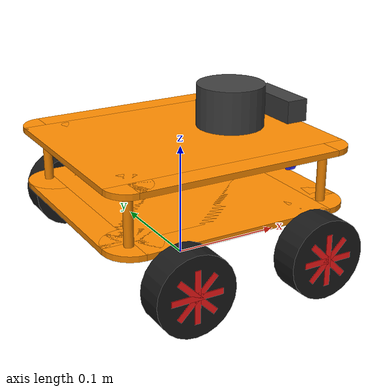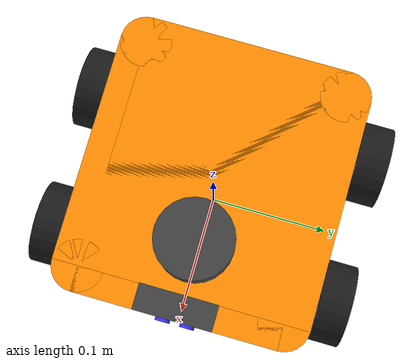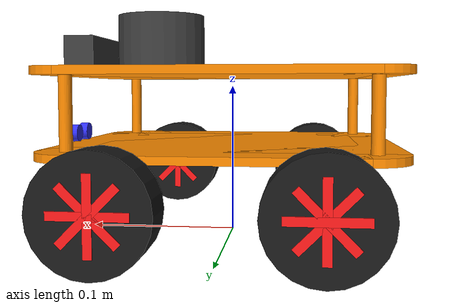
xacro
<?xml version="1.0"?>
<robot name="mobo_bot" xmlns:xacro="http://www.ros.org/wiki/xacro">

    <xacro:include filename="$(find mobo_bot_description)/urdf/urdf_models/box_with_fillet_macro.xacro"/>
    <xacro:include filename="$(find mobo_bot_description)/urdf/urdf_models/drive_wheel_macro.xacro"/>
    <xacro:include filename="$(find mobo_bot_description)/urdf/urdf_models/drive_wheel_rim_macro.xacro"/>
    <xacro:include filename="$(find mobo_bot_description)/urdf/urdf_models/sonar.xacro"/>
    <xacro:include filename="$(find mobo_bot_description)/urdf/urdf_models/lidar.xacro"/>
    <xacro:include filename="$(find mobo_bot_description)/urdf/urdf_models/cam.xacro"/>

    <xacro:property name="chassis_length" value="0.22"/>
    <xacro:property name="chassis_width" value="0.20"/>
    <xacro:property name="chassis_height" value="0.05"/>
    <xacro:property name="slab_height" value="0.005"/>
    <xacro:property name="chassis_mass" value="2.0"/>
    <xacro:property name="chassis_color" value="orange"/>

    <xacro:property name="wheel_seperation" value="0.236"/>
    <xacro:property name="wheel_radius" value="0.034"/>
    <xacro:property name="wheel_width" value="0.026"/>
    <xacro:property name="wheel_mass" value="0.08"/>

    <xacro:property name="wheel_height_offset" value="0.025"/>

    <xacro:property name="wheel_base_dist" value="0.12"/>

    <link name="base_link">
    </link>

    <joint name="chassis_joint" type="fixed">
        <parent link="base_link"/>
        <child link="chassis"/>
        <origin xyz="0 0 ${wheel_radius+wheel_height_offset}"/>
    </joint>

    <link name="chassis">
        <xacro:insert_box_with_fillet x="0" y="0" z="0"
            size_x="${chassis_length}" size_y="${chassis_width}" size_z="${slab_height}"
            fillet_radius="0.025"/>
        <xacro:insert_box_with_fillet x="0" y="0" z="${chassis_height}"
            size_x="${chassis_length}" size_y="${chassis_width}" size_z="${slab_height}"
            fillet_radius="0.02"/>

        <visual>
            <origin xyz="0.09 0.08 ${chassis_height/2}" rpy="0 0 0"/>
            <geometry>
                <cylinder radius="0.004" length="${chassis_height}"/>
            </geometry>
            <material name="orange"/>
        </visual>
        <visual>
            <origin xyz="0.09 -0.08 ${chassis_height/2}" rpy="0 0 0"/>
            <geometry>
                <cylinder radius="0.004" length="${chassis_height}"/>
            </geometry>
            <material name="orange"/>
        </visual>

        <visual>
            <origin xyz="-0.09 0.08 ${chassis_height/2}" rpy="0 0 0"/>
            <geometry>
                <cylinder radius="0.004" length="${chassis_height}"/>
            </geometry>
            <material name="orange"/>
        </visual>
        <visual>
            <origin xyz="-0.09 -0.08 ${chassis_height/2}" rpy="0 0 0"/>
            <geometry>
                <cylinder radius="0.004" length="${chassis_height}"/>
            </geometry>
            <material name="orange"/>
        </visual>

        <collision>
           <origin xyz="0 0 ${chassis_height/2}" rpy="0 0 0"/>
            <geometry>
                <box size="${chassis_length} ${chassis_width} ${chassis_height}"/>
            </geometry>
        </collision>
        <xacro:inertial_box mass="${chassis_mass}" x="${chassis_length}" y="${chassis_width}" z="${chassis_height}">
            <origin xyz="0 0 ${chassis_height/2}" rpy="0 0 0"/>
        </xacro:inertial_box>
    </link>

    <xacro:insert_drive_wheel
        base_name="front_left_wheel"
        parent_name="base_link"
        x="${wheel_base_dist/2}" y="${wheel_seperation/2}" z="${wheel_radius}"
        mass="${wheel_mass}"
        radius="${wheel_radius}"
        thickness="${wheel_width}"/>

    <xacro:insert_drive_wheel_rim
        base_name="front_left_rim"
        parent_name="front_left_wheel"
        radius="${wheel_radius}"
        thickness="${wheel_width}"
        spoke_width="0.005"/>

    <xacro:insert_drive_wheel
        base_name="front_right_wheel"
        parent_name="base_link"
        x="${wheel_base_dist/2}" y="${-wheel_seperation/2}" z="${wheel_radius}"
        mass="${wheel_mass}"
        radius="${wheel_radius}"
        thickness="${wheel_width}"/>

    <xacro:insert_drive_wheel_rim
        base_name="front_right_rim"
        parent_name="front_right_wheel"
        radius="${wheel_radius}"
        thickness="${wheel_width}"
        spoke_width="0.005"/>

    <xacro:insert_drive_wheel
        base_name="rear_left_wheel"
        parent_name="base_link"
        x="${-wheel_base_dist/2}" y="${wheel_seperation/2}" z="${wheel_radius}"
        mass="${wheel_mass}"
        radius="${wheel_radius}"
        thickness="${wheel_width}"/>

    <xacro:insert_drive_wheel_rim
        base_name="rear_left_rim"
        parent_name="rear_left_wheel"
        radius="${wheel_radius}"
        thickness="${wheel_width}"
        spoke_width="0.005"/>

    <xacro:insert_drive_wheel
        base_name="rear_right_wheel"
        parent_name="base_link"
        x="${-wheel_base_dist/2}" y="${-wheel_seperation/2}" z="${wheel_radius}"
        mass="${wheel_mass}"
        radius="${wheel_radius}"
        thickness="${wheel_width}"/>

    <xacro:insert_drive_wheel_rim
        base_name="rear_right_rim"
        parent_name="rear_right_wheel"
        radius="${wheel_radius}"
        thickness="${wheel_width}"
        spoke_width="0.005"/>

        <!-- Z value determins the height of the laser scans -->
    <xacro:property name="lidar_z_offset" value="0.03"/>
    <xacro:insert_lidar
        base_name="lidar"
        parent_name="chassis"
        x="0.05" y="0" z="${chassis_height+lidar_z_offset}"
        mass="0.1"/>

    <xacro:property name="imu_height" value="0.02"/>
    <joint name="imu_joint" type="fixed">
        <parent link="chassis"/>
        <child link="imu"/>
        <origin xyz="0.075 0 ${slab_height+imu_height}"/>
    </joint>

    <link name="imu"></link>

    <xacro:insert_sonar
        base_name="sonar"
        parent_name="chassis"
        x="0.11" y="0" z="${chassis_height/6}"
        mass="0.005"/>

    <xacro:insert_camera
        base_name="camera"
        parent_name="chassis"
        x="0.11" y="0" z="${chassis_height+0.015}"
        mass="0.005" tilt_angle="0.00"/>

</robot>

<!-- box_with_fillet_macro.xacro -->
<robot xmlns:xacro="http://www.ros.org/wiki/xacro" >

    <xacro:macro name="insert_box_with_fillet" params="x y z size_x size_y size_z fillet_radius">
        <visual>
            <origin xyz="${x} ${y} ${z}" rpy="0 0 0"/>
            <geometry>
                <box size="${size_x} ${size_y-(2*fillet_radius)} ${size_z}"/>
            </geometry>
            <material name="orange">
              <color rgba="1 0.55 0 1"/>
            </material>
        </visual>
        <visual>
            <origin xyz="${x} ${y} ${z}" rpy="0 0 0"/>
            <geometry>
                <box size="${size_x-(2*fillet_radius)} ${size_y} ${size_z}"/>
            </geometry>
            <material name="orange">
              <color rgba="1 0.55 0 1"/>
            </material>
        </visual>
        <visual>
            <origin xyz="${x+((size_x/2)-fillet_radius)} ${y+((size_y/2)-fillet_radius)} ${z}" rpy="0 0 0"/>
            <geometry>
                <cylinder length="${size_z}" radius="${fillet_radius}"/>
            </geometry>
            <material name="orange">
              <color rgba="1 0.55 0 1"/>
            </material>
        </visual>
        <visual>
            <origin xyz="${x+((size_x/2)-fillet_radius)} ${y-((size_y/2)-fillet_radius)} ${z}" rpy="0 0 0"/>
            <geometry>
                <cylinder length="${size_z}" radius="${fillet_radius}"/>
            </geometry>
            <material name="orange">
              <color rgba="1 0.55 0 1"/>
            </material>
        </visual>
        <visual>
            <origin xyz="${x-((size_x/2)-fillet_radius)} ${y+((size_y/2)-fillet_radius)} ${z}" rpy="0 0 0"/>
            <geometry>
                <cylinder length="${size_z}" radius="${fillet_radius}"/>
            </geometry>
            <material name="orange">
              <color rgba="1 0.55 0 1"/>
            </material>
        </visual>
        <visual>
            <origin xyz="${x-((size_x/2)-fillet_radius)} ${y-((size_y/2)-fillet_radius)} ${z}" rpy="0 0 0"/>
            <geometry>
                <cylinder length="${size_z}" radius="${fillet_radius}"/>
            </geometry>
            <material name="orange">
              <color rgba="1 0.55 0 1"/>
            </material>
        </visual>
    </xacro:macro>

</robot>

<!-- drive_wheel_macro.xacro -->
<robot xmlns:xacro="http://www.ros.org/wiki/xacro" >

    <xacro:macro name="inertial_cylinder" params="mass length radius *origin">
        <inertial>
            <xacro:insert_block name="origin"/>
            <mass value="${mass}" />
            <inertia ixx="${(1/12) * mass * (3*radius*radius + length*length)}" ixy="0.0" ixz="0.0"
                    iyy="${(1/12) * mass * (3*radius*radius + length*length)}" iyz="0.0"
                    izz="${(1/2) * mass * (radius*radius)}" />
        </inertial>
    </xacro:macro>

    <xacro:macro name="insert_drive_wheel" params="base_name parent_name x y z mass radius thickness">
        <joint name="${base_name}_joint" type="continuous">
            <parent link="${parent_name}"/>
            <child link="${base_name}"/>
            <origin xyz="${x} ${y} ${z}" rpy="${-pi/2} 0 0"/>
            <axis xyz="0 0 1"/>
            <dynamics damping="0.2"/>
        </joint>

        <link name="${base_name}">
            <visual>
                <origin xyz="0 0 0" rpy="0 0 0"/>
                <geometry>
                    <cylinder radius="${radius}" length="${thickness}"/>
                </geometry>
                <material name="black">
                    <color rgba="0.1 0.1 0.1 1"/>
                </material>
            </visual>
            <collision>
            <origin xyz="0 0 0" rpy="0 0 0"/>
                <geometry>
                    <cylinder radius="${radius}" length="${thickness}"/>
                </geometry>
            </collision>
            <xacro:inertial_cylinder mass="${mass}" length="${thickness}" radius="${radius}">
                <origin xyz="0 0 0" rpy="0 0 0"/>
            </xacro:inertial_cylinder>
        </link>

    </xacro:macro>

</robot>

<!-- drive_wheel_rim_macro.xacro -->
<robot xmlns:xacro="http://www.ros.org/wiki/xacro" >

    <xacro:macro name="insert_drive_wheel_rim" params="base_name parent_name radius thickness spoke_width">

        <joint name="${base_name}_joint" type="fixed">
            <parent link="${parent_name}"/>
            <child link="${base_name}"/>
            <origin xyz="0 0 0" rpy="0 0 0"/>
        </joint>

        <link name="${base_name}">
            <visual>
                <origin xyz="0 0 0" rpy="0 0 0"/>
                <geometry>
                    <box size="${spoke_width} ${radius*1.3} ${thickness+0.001}"/>
                </geometry>
                <material name="red">
                    <color rgba="1 0.1 0.1 1"/>
                </material>
            </visual>
            <visual>
                <origin xyz="0 0 0" rpy="0 0 ${pi/2}"/>
                <geometry>
                    <box size="${spoke_width} ${radius*1.3} ${thickness+0.001}"/>
                </geometry>
                <material name="red">
                    <color rgba="1 0.1 0.1 1"/>
                </material>
            </visual>
            <visual>
                <origin xyz="0 0 0" rpy="0 0 ${-pi/4}"/>
                <geometry>
                    <box size="${spoke_width} ${radius*1.3} ${thickness+0.001}"/>
                </geometry>
                <material name="red">
                    <color rgba="1 0.1 0.1 1"/>
                </material>
            </visual>
            <visual>
                <origin xyz="0 0 0" rpy="0 0 ${pi/4}"/>
                <geometry>
                    <box size="${spoke_width} ${radius*1.3} ${thickness+0.001}"/>
                </geometry>
                <material name="red">
                    <color rgba="1 0.1 0.1 1"/>
                </material>
            </visual>
        </link>

    </xacro:macro>

</robot>

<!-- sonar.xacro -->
<robot xmlns:xacro="http://www.ros.org/wiki/xacro">

    <xacro:macro name="insert_sonar" params="base_name parent_name x y z mass">
        <joint name="${base_name}_joint" type="fixed">
            <parent link="${parent_name}"/>
            <child link="${base_name}"/>
            <origin xyz="${x} ${y} ${z}" rpy="0 0 0"/>
        </joint>

        <link name="${base_name}">
            <visual>
                <origin xyz="0 0.01 0" rpy="0 ${pi/2} 0"/>
                <geometry>
                    <cylinder radius="0.006" length="0.006"/>
                </geometry>
                <material name="blue">
                    <color rgba="0.2 0.2 1 1"/>
                </material>
            </visual>
            <collision>
                <origin xyz="0 0.01 0" rpy="0 ${pi/2} 0"/>
                <geometry>
                    <cylinder radius="0.006" length="0.006"/>
                </geometry>
            </collision>

            <visual>
                <origin xyz="0 -0.01 0" rpy="0 ${pi/2} 0"/>
                <geometry>
                    <cylinder radius="0.006" length="0.006"/>
                </geometry>
                <material name="blue">
                    <color rgba="0.2 0.2 1 1"/>
                </material>
            </visual>
            <collision>
                <origin xyz="0 -0.01 0" rpy="0 ${pi/2} 0"/>
                <geometry>
                    <cylinder radius="0.006" length="0.006"/>
                </geometry>
            </collision>

            <xacro:inertial_cylinder mass="${mass}" length="0.006" radius="0.006">
                <origin xyz="0 0.01 0" rpy="0 ${pi/2} 0"/>
            </xacro:inertial_cylinder>
        </link>
    </xacro:macro>

</robot>

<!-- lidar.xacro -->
<robot xmlns:xacro="http://www.ros.org/wiki/xacro" >

    <xacro:macro name="insert_lidar" params="base_name parent_name x y z mass">
        <joint name="${base_name}_joint" type="fixed">
            <parent link="${parent_name}"/>
            <child link="${base_name}"/>
            <origin xyz="${x} ${y} ${z}" rpy="0 0 0"/>
        </joint>

        <link name="${base_name}">
            <visual>
                <origin xyz="0 0 -0.01"/>
                <geometry>
                    <cylinder radius="0.03" length="0.04"/>
                </geometry>
                <material name="grey">
                    <color rgba="0.25 0.25 0.25 1"/>
                </material>
            </visual>
            <collision>
                <origin xyz="0 0 -0.01"/>
                <geometry>
                    <cylinder radius="0.03" length="0.04"/>
                </geometry>
            </collision>
            <xacro:inertial_cylinder mass="${mass}" length="0.04" radius="0.03">
                <origin xyz="0 0 -0.01" rpy="0 0 0"/>
            </xacro:inertial_cylinder>
        </link>
    </xacro:macro>

</robot>

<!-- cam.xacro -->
<robot xmlns:xacro="http://www.ros.org/wiki/xacro" >

    <xacro:macro name="insert_camera" params="base_name parent_name x y z mass tilt_angle">
        <joint name="${base_name}_joint" type="fixed">
            <parent link="${parent_name}"/>
            <child link="${base_name}"/>
            <origin xyz="${x} ${y} ${z}" rpy="0 ${tilt_angle} 0"/>
        </joint>

        <link name="${base_name}">
            <visual>
                <origin xyz="-0.01 0 0" rpy="0 0 0"/>
                <geometry>
                    <box size="0.02 0.06 0.02"/>
                </geometry>
                <material name="grey">
                    <color rgba="0.25 0.25 0.25 1"/>
                </material>
            </visual>

            <collision>
                <origin xyz="-0.01 0 0" rpy="0 0 0"/>
                <geometry>
                    <box size="0.02 0.06 0.02"/>
                </geometry>
            </collision>
            <xacro:inertial_box mass="${mass}" x="0.02" y="0.06" z="0.02">
                <origin xyz="-0.01 0 0" rpy="0 0 0"/>
            </xacro:inertial_box>
        </link>

        <joint name="${base_name}_optical_joint" type="fixed">
            <parent link="${base_name}"/>
            <child link="${base_name}_optical"/>
            <origin xyz="0 0 0" rpy="${-pi/2} 0 ${-pi/2}"/>
        </joint>

        <link name="${base_name}_optical"/>

    </xacro:macro>

</robot>
